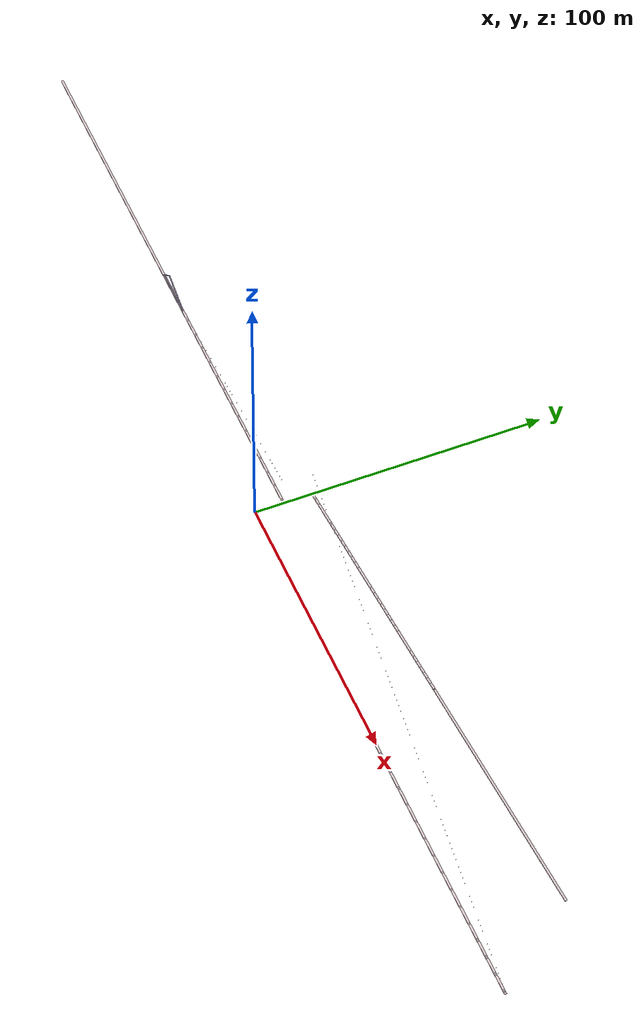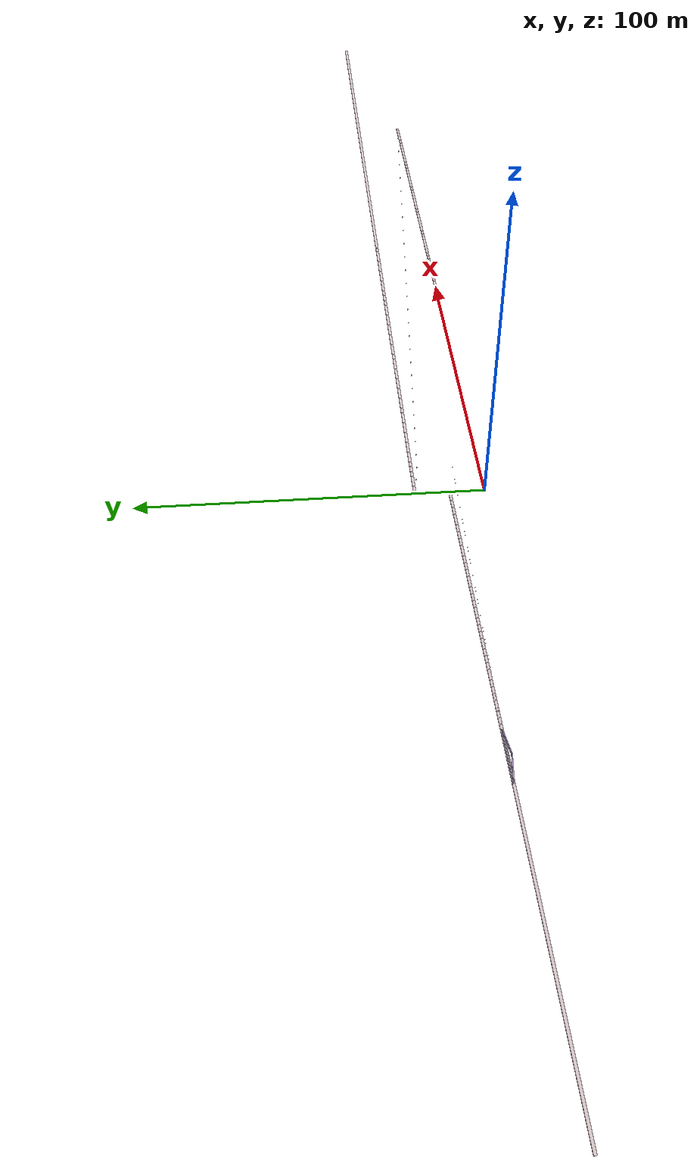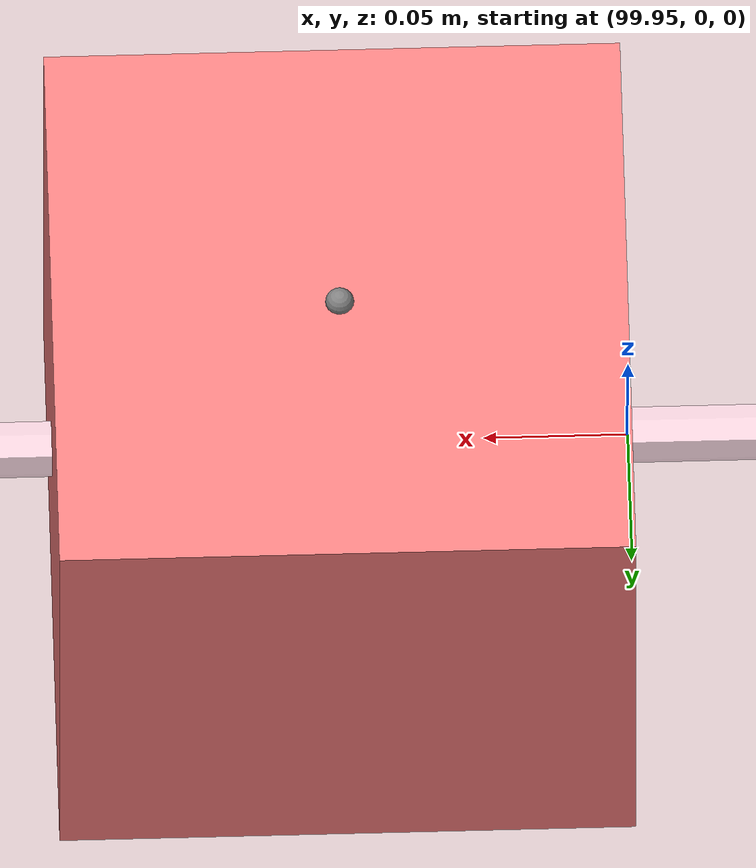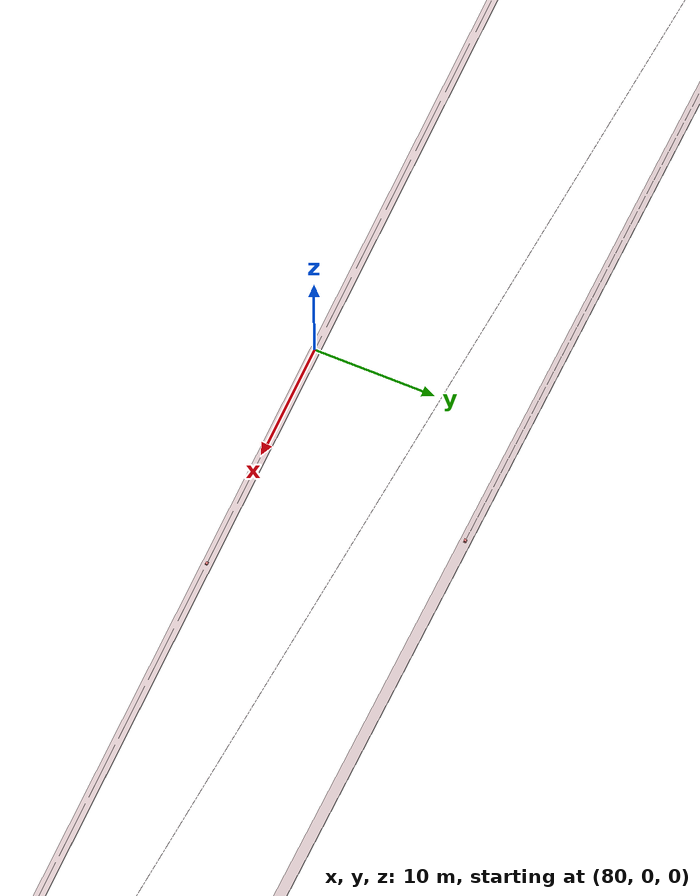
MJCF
<mujoco>
            <compiler angle="radian" autolimits="true" />
            <compiler meshdir="asset" texturedir="asset" assetdir="asset" />
            <option gravity="0 0 -9.81" />
            <default class="main">
            <geom friction="0 0 0" solimp="0.9 1 0.001 0.01 20" solref="0.02 1" condim="1" />
        </default>

        <visual>
            <headlight diffuse="0.7 0.7 0.7" ambient="0.5 0.5 0.5" />
            <global offwidth="1920" offheight="1080" />
        </visual>

        <asset>
            <texture type="skybox" builtin="gradient" rgb1="0 0.5 0.7" rgb2="0 0 0" width="512" height="512" />
            <texture type="2d" name="checks1" builtin="checker" rgb1="1 1 1" rgb2="0 0 0" width="256" height="256" />
            <material name="test_color" texture="checks1" texuniform="true" texrepeat="2 2" />
            <material name="reflectance" reflectance=".4" />
            <texture name="grid" type="2d" builtin="checker" width="512" height="512" rgb1="1.0 0.6235 0.1098" rgb2="1.0 0.749 0.4118" />
            <texture name="white-texture-background" type="2d" file="/home/aryansatpathy/DevStuff/cmu/PHO/sim/geom_sources/fixed_sources/rocket/rocket.white-texture-background.png" content_type="image/png" />
            <material name="pulley" texture="grid" texrepeat="2 2" texuniform="true" />

        </asset>
        <worldbody><body name="twosidemassplane_0.mass0" pos="100.05 0.0 0.0" quat="1.0 0.0 0.0 0.0">
<geom name="twosidemassplane_0.mass0.geom" type="box" pos="0 0 0" size="0.1 0.1 0.1" rgba="1.0 0.5 0.5 1.0" mass="1.0" quat="0 0 0 1" condim="1" contype="1" conaffinity="1" />
<site name="twosidemassplane_0.mass0.top-1" pos="0.0 0 0.1" quat="1.0 -0.0 -0.0 -0.0" />
<site name="twosidemassplane_0.mass0.sensor" pos="0 0 0" quat="1.0 -0.0 -0.0 -0.0" />
<site name="twosidemassplane_0.mass0.center" pos="0 0 0" quat="1.0 -0.0 -0.0 -0.0" />
<site name="twosidemassplane_0.mass0.left" pos="-0.1 0 0" quat="1.0 -0.0 -0.0 -0.0" />
<site name="twosidemassplane_0.mass0.right" pos="0.1 0 0" quat="1.0 -0.0 -0.0 -0.0" />
<site name="twosidemassplane_0.mass0.bottom" pos="0 0 -0.1" quat="1.0 -0.0 -0.0 -0.0" />
<joint name="twosidemassplane_0.mass0.joint" type="free" axis="1 1 1" pos="0 0 0" />
</body>
<body name="twosidemassplane_0.plane" pos="100.05 0.0 -0.2" quat="1.0 0.0 0.0 0.0"><geom name="twosidemassplane_0.plane.geom" type="box" pos="0 0 0" size="100 0.4 0.1" material="reflectance" rgba="0.82745098 0.75686275 0.76470588 1" mass="1.0" quat="0 0 0 1" condim="1" contype="1" conaffinity="1" />
<site name="twosidemassplane_0.plane.sensor" pos="0 0 0" quat="1.0 -0.0 -0.0 -0.0" />
<site name="twosidemassplane_0.plane.left" pos="-100.05 0 0.2" quat="1.0 -0.0 -0.0 -0.0" />
<site name="twosidemassplane_0.plane.right" pos="100.05 0 0.2" quat="1.0 -0.0 -0.0 -0.0" />
<site name="twosidemassplane_0.plane.additional_site-0" pos="-100.05 0.0 0.25" quat="1.0 -0.0 -0.0 -0.0" />
</body>
<body name="masswithfixedpulley_1.fixed_pulley" pos="0.0 10.0 10.0" quat="1.0 0.0 0.0 0.0"><site name="masswithfixedpulley_1.fixed_pulley.site" pos="0 0 0.0" quat="1.0 -0.0 -0.0 -0.0" />
</body>
<body name="masswithfixedpulley_1.mass_prism_plane.mass" pos="-93.94675977610183 10.0 2.434735806660081" quat="0.980734172265963 0.0 0.19534708431352724 0.0">
<geom name="masswithfixedpulley_1.mass_prism_plane.mass.geom" type="box" pos="0 0 0" size="0.1 0.1 0.1" rgba="1.0 0.5 1.0 1.0" mass="17.07" quat="0 0 0 1" condim="1" contype="1" conaffinity="1" />
<site name="masswithfixedpulley_1.mass_prism_plane.mass.top-1" pos="0.0 0 0.1" quat="0.980734172265963 -0.0 -0.19534708431352724 -0.0" />
<site name="masswithfixedpulley_1.mass_prism_plane.mass.sensor" pos="0 0 0" quat="0.980734172265963 -0.0 -0.19534708431352724 -0.0" />
<site name="masswithfixedpulley_1.mass_prism_plane.mass.center" pos="0 0 0" quat="0.980734172265963 -0.0 -0.19534708431352724 -0.0" />
<site name="masswithfixedpulley_1.mass_prism_plane.mass.left" pos="-0.1 0 0" quat="0.980734172265963 -0.0 -0.19534708431352724 -0.0" />
<site name="masswithfixedpulley_1.mass_prism_plane.mass.right" pos="0.1 0 0" quat="0.980734172265963 -0.0 -0.19534708431352724 -0.0" />
<site name="masswithfixedpulley_1.mass_prism_plane.mass.bottom" pos="0 0 -0.1" quat="0.980734172265963 -0.0 -0.19534708431352724 -0.0" />
<joint name="masswithfixedpulley_1.mass_prism_plane.mass.joint" type="free" axis="1 1 1" pos="0 0 0" />
</body>
<body name="masswithfixedpulley_1.mass_prism_plane.prism" pos="-100.05 10.0 4.749999999999999" quat="1.0 0.0 0.0 0.0"><geom name="masswithfixedpulley_1.mass_prism_plane.prism.geom_bottom" type="box" pos="3.5143595446556435 0.0 -5.0" size="8.538854054309649 0.15 0.1" rgba="0.70588235 0.62352941 0.8 1" mass="0.5533333333333333" quat="1 0 0 0" condim="1" contype="1" conaffinity="1" />
<geom name="masswithfixedpulley_1.mass_prism_plane.prism.geom_left" type="box" pos="-2.512247254827003 0.0 -2.5" size="3.544204603205889 0.15 0.1" rgba="0.70588235 0.62352941 0.8 1" mass="0.5533333333333333" quat="0.9243463789041869 0.0 -0.38155441526303585 0.0" condim="1" contype="1" conaffinity="1" />
<geom name="masswithfixedpulley_1.mass_prism_plane.prism.geom_right" type="box" pos="6.026606799482646 0.0 -2.5" size="6.524568147821775 0.15 0.1" rgba="0.70588235 0.62352941 0.8 1" mass="0.5533333333333333" quat="0.980734172265963 0.0 0.19534708431352724 0.0" condim="1" contype="1" conaffinity="1" />
<site name="masswithfixedpulley_1.mass_prism_plane.prism.sensor" pos="0 0 -2.5" quat="1.0 -0.0 -0.0 -0.0" />
<site name="masswithfixedpulley_1.mass_prism_plane.prism.left" pos="-5.024494509654006 0 -5" quat="1.0 -0.0 -0.0 -0.0" />
<site name="masswithfixedpulley_1.mass_prism_plane.prism.right" pos="12.053213598965293 0 -5" quat="1.0 -0.0 -0.0 -0.0" />
<site name="masswithfixedpulley_1.mass_prism_plane.prism.top" pos="0 0 0" quat="1.0 -0.0 -0.0 -0.0" />
<joint name="masswithfixedpulley_1.mass_prism_plane.prism.joint" type="free" axis="1 1 1" pos="0 0 0" />
</body>
<body name="masswithfixedpulley_1.mass_prism_plane.plane" pos="-100.05 10.0 -0.45" quat="1.0 0.0 0.0 0.0"><geom name="masswithfixedpulley_1.mass_prism_plane.plane.geom" type="box" pos="0 0 0" size="100 0.4 0.1" material="reflectance" rgba="0.82745098 0.75686275 0.76470588 1" mass="1.0" quat="0 0 0 1" condim="1" contype="1" conaffinity="1" />
<site name="masswithfixedpulley_1.mass_prism_plane.plane.sensor" pos="0 0 0" quat="1.0 -0.0 -0.0 -0.0" />
<site name="masswithfixedpulley_1.mass_prism_plane.plane.left" pos="-100.05 0 0.2" quat="1.0 -0.0 -0.0 -0.0" />
<site name="masswithfixedpulley_1.mass_prism_plane.plane.right" pos="100.05 0 0.2" quat="1.0 -0.0 -0.0 -0.0" />
<site name="masswithfixedpulley_1.mass_prism_plane.plane.additional_site-0" pos="100.05 0.0 0.25" quat="1.0 -0.0 -0.0 -0.0" />
</body>

<body name="masswithfixedpulley_2.fixed_pulley" pos="0.0 20.0 10.0" quat="1.0 0.0 0.0 0.0"><site name="masswithfixedpulley_2.fixed_pulley.site" pos="0 0 0.0" quat="1.0 -0.0 -0.0 -0.0" />
</body>
<body name="masswithfixedpulley_2.mass_plane.mass0" pos="98.53001568887143 20.0 17.12350017557638" quat="0.9961946980917455 0.0 -0.08715574274765817 0.0">
<geom name="masswithfixedpulley_2.mass_plane.mass0.geom" type="box" pos="0 0 0" size="0.1 0.1 0.1" rgba="1.0 0.5 0.5 1.0" mass="6.29" quat="0 0 0 1" condim="1" contype="1" conaffinity="1" />
<site name="masswithfixedpulley_2.mass_plane.mass0.top-1" pos="0.0 0 0.1" quat="0.9961946980917455 -0.0 0.08715574274765817 -0.0" />
<site name="masswithfixedpulley_2.mass_plane.mass0.sensor" pos="0 0 0" quat="0.9961946980917455 -0.0 0.08715574274765817 -0.0" />
<site name="masswithfixedpulley_2.mass_plane.mass0.center" pos="0 0 0" quat="0.9961946980917455 -0.0 0.08715574274765817 -0.0" />
<site name="masswithfixedpulley_2.mass_plane.mass0.left" pos="-0.1 0 0" quat="0.9961946980917455 -0.0 0.08715574274765817 -0.0" />
<site name="masswithfixedpulley_2.mass_plane.mass0.right" pos="0.1 0 0" quat="0.9961946980917455 -0.0 0.08715574274765817 -0.0" />
<site name="masswithfixedpulley_2.mass_plane.mass0.bottom" pos="0 0 -0.1" quat="0.9961946980917455 -0.0 0.08715574274765817 -0.0" />
<joint name="masswithfixedpulley_2.mass_plane.mass0.joint" type="free" axis="1 1 1" pos="0 0 0" />
</body>
<body name="masswithfixedpulley_2.mass_plane.plane" pos="98.56474532440481 20.0 16.926538624973936" quat="0.9961946980917455 0.0 -0.08715574274765817 0.0"><geom name="masswithfixedpulley_2.mass_plane.plane.geom" type="box" pos="0 0 0" size="100 0.4 0.1" material="reflectance" rgba="0.82745098 0.75686275 0.76470588 1" mass="1.0" quat="0 0 0 1" condim="1" contype="1" conaffinity="1" />
<site name="masswithfixedpulley_2.mass_plane.plane.sensor" pos="0 0 0" quat="0.9961946980917455 -0.0 0.08715574274765817 -0.0" />
<site name="masswithfixedpulley_2.mass_plane.plane.left" pos="-100.05 0 0.2" quat="0.9961946980917455 -0.0 0.08715574274765817 -0.0" />
<site name="masswithfixedpulley_2.mass_plane.plane.right" pos="100.05 0 0.2" quat="0.9961946980917455 -0.0 0.08715574274765817 -0.0" />
<site name="masswithfixedpulley_2.mass_plane.plane.additional_site-0" pos="-100.04131759111667 0.0 0.2492403876506124" quat="0.9961946980917455 -0.0 0.08715574274765817 -0.0" />
</body>

</worldbody><tendon>
<spatial name="spatial_0" width="0.01" rgba="0.9686 0.8392 0.8784 1" range="0 290.74535392923127" limited="true" solimplimit="0.99 1 0.001 0.01 20" solreflimit="0.02 1">
<site site="twosidemassplane_0.mass0.left" />
<site site="twosidemassplane_0.plane.left" />
<site site="twosidemassplane_0.plane.additional_site-0" />
<site site="masswithfixedpulley_1.fixed_pulley.site" />
<site site="masswithfixedpulley_1.mass_prism_plane.prism.right" />
<site site="masswithfixedpulley_1.mass_prism_plane.plane.right" />
<site site="masswithfixedpulley_1.mass_prism_plane.plane.additional_site-0" />
</spatial>
</tendon>
<tendon>
<spatial name="spatial_1" width="0.01" rgba="0.9686 0.8392 0.8784 1" range="0 411.49549908056053" limited="true" solimplimit="0.99 1 0.001 0.01 20" solreflimit="0.02 1">
<site site="twosidemassplane_0.mass0.right" />
<site site="twosidemassplane_0.plane.right" />
<site site="masswithfixedpulley_2.fixed_pulley.site" />
<site site="masswithfixedpulley_2.mass_plane.plane.additional_site-0" />
<site site="masswithfixedpulley_2.mass_plane.plane.left" />
<site site="masswithfixedpulley_2.mass_plane.mass0.left" />
</spatial>
</tendon>

        <sensor>

        </sensor>
        <custom>

        </custom>
        <contact>

        </contact>
        <actuator>

        </actuator>
    </mujoco>
